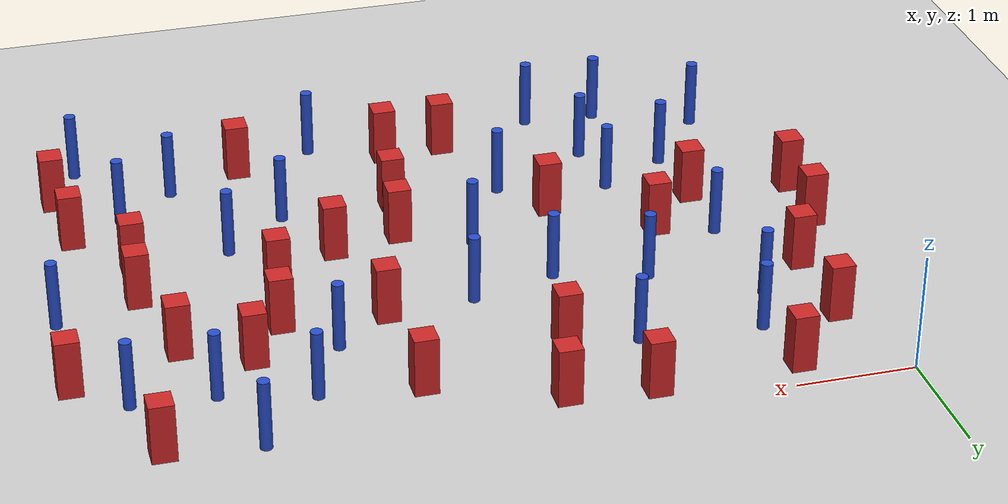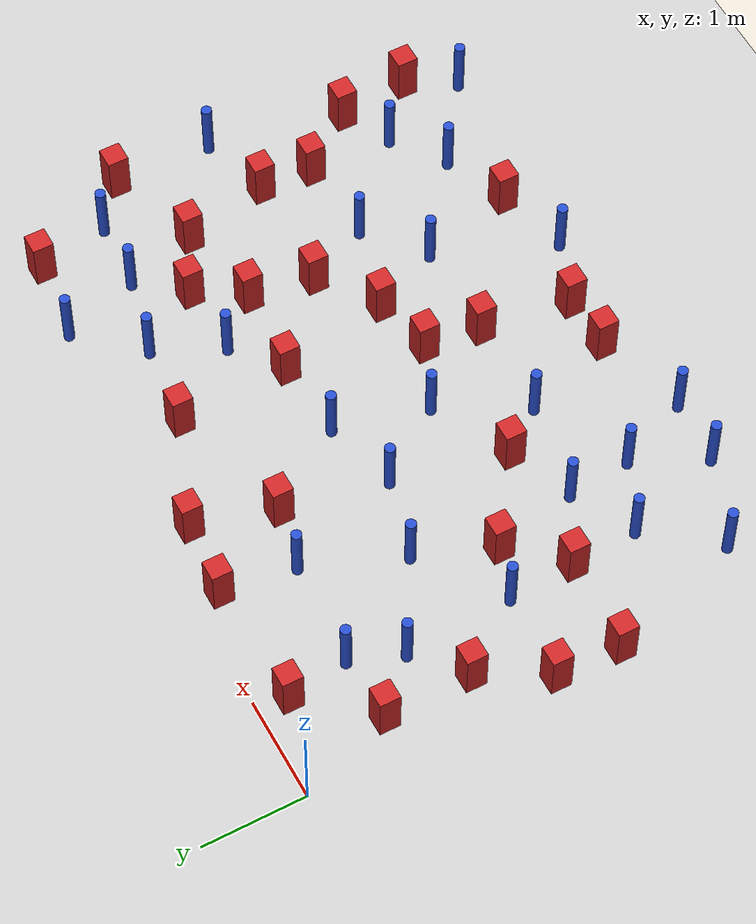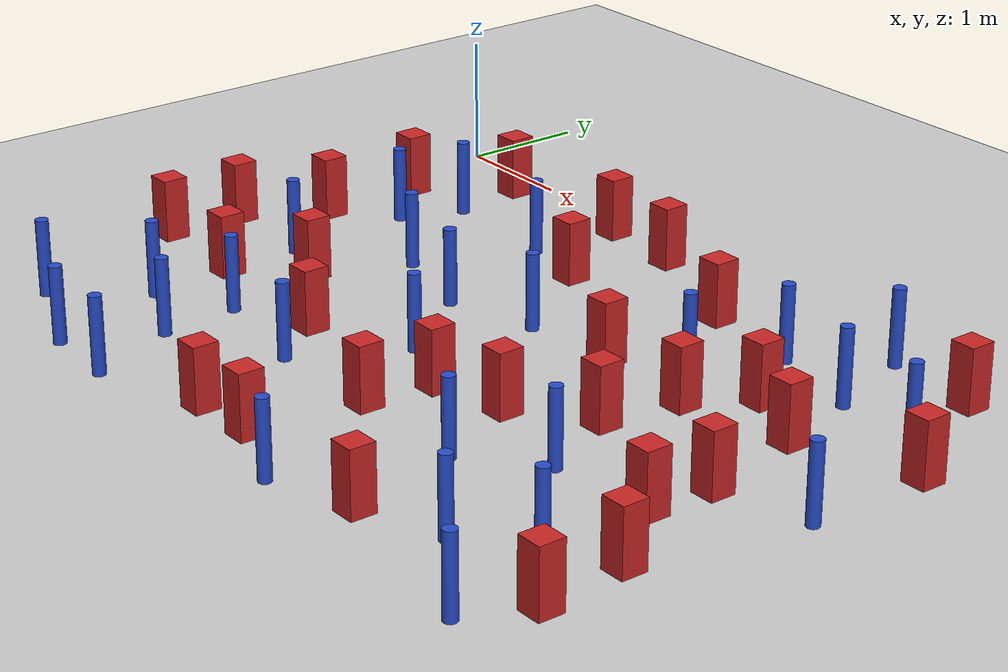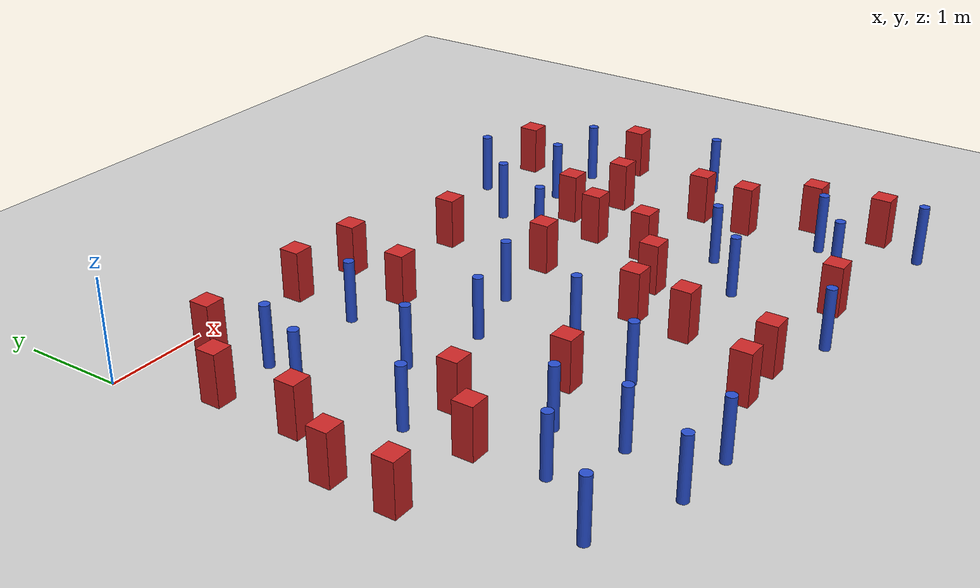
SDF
<sdf version="1.6">
 <world name="default">
  <model name="ground_plane">
   <static>1</static>
   <link name="link">
    <collision name="collision">
     <geometry><plane><normal>0 0 1</normal><size>100 100</size></plane></geometry>
     <surface><friction><ode><mu>100</mu><mu2>50</mu2></ode></friction></surface>
    </collision>
    <visual name="visual">
     <cast_shadows>0</cast_shadows>
     <geometry><plane><normal>0 0 1</normal><size>100 100</size></plane></geometry>
     <material>
      <ambient>1.0 1.0 1.0 1.0</ambient>
      <diffuse>0.8 0.8 0.8 1.0</diffuse>
      <specular>0.01 0.01 0.01 1.000000</specular>
     </material>
    </visual>
   </link>
  </model>
  <model name="NamedLocations">
   <static>true</static>
   <link name="DefaultStart"><pose>8.5 0 0 0 0 3.14</pose></link>
  </model>
  <model name="pole_obstacle15">
   <static>true</static>
   <pose>0.769162764742 -1.35992684402 2.88873142074e-08 -9.90536689855e-09 4.60219948989e-07 -1.20965994962e-07</pose>
   <link name="link">
    <pose>0 0 0.3 0 -0 0</pose>
    <inertial>
     <mass>1</mass>
     <inertia><ixx>0.145833</ixx><ixy>0</ixy><ixz>0</ixz><iyy>0.145833</iyy><iyz>0</iyz><izz>0.125</izz></inertia>
    </inertial>
    <collision name="collision">
     <geometry><cylinder><radius>0.05</radius><length>.6</length></cylinder></geometry>
    </collision>
    <visual name="visual">
     <geometry><cylinder><radius>0.05</radius><length>.6</length></cylinder></geometry>
     <material>
      <script><name>Gazebo/Blue</name><uri>file://media/materials/scripts/gazebo.material</uri></script>
     </material>
    </visual>
   </link>
  </model>
  <model name="pole_obstacle17">
   <static>true</static>
   <pose>0.95714295873 -0.871402900502 2.88873142074e-08 -9.90536689596e-09 4.60219948995e-07 -1.20965994957e-07</pose>
   <link name="link">
    <pose>0 0 0.3 0 -0 0</pose>
    <inertial>
     <mass>1</mass>
     <inertia><ixx>0.145833</ixx><ixy>0</ixy><ixz>0</ixz><iyy>0.145833</iyy><iyz>0</iyz><izz>0.125</izz></inertia>
    </inertial>
    <collision name="collision">
     <geometry><cylinder><radius>0.05</radius><length>.6</length></cylinder></geometry>
    </collision>
    <visual name="visual">
     <geometry><cylinder><radius>0.05</radius><length>.6</length></cylinder></geometry>
     <material>
      <script><name>Gazebo/Blue</name><uri>file://media/materials/scripts/gazebo.material</uri></script>
     </material>
    </visual>
   </link>
  </model>
  <model name="pole_obstacle29">
   <static>true</static>
   <pose>5.98995046235 -4.76751873992 2.88873142074e-08 -9.90536690842e-09 4.60219948965e-07 -1.20965994976e-07</pose>
   <link name="link">
    <pose>0 0 0.3 0 -0 0</pose>
    <inertial>
     <mass>1</mass>
     <inertia><ixx>0.145833</ixx><ixy>0</ixy><ixz>0</ixz><iyy>0.145833</iyy><iyz>0</iyz><izz>0.125</izz></inertia>
    </inertial>
    <collision name="collision">
     <geometry><cylinder><radius>0.05</radius><length>.6</length></cylinder></geometry>
    </collision>
    <visual name="visual">
     <geometry><cylinder><radius>0.05</radius><length>.6</length></cylinder></geometry>
     <material>
      <script><name>Gazebo/Blue</name><uri>file://media/materials/scripts/gazebo.material</uri></script>
     </material>
    </visual>
   </link>
  </model>
  <model name="pole_obstacle30">
   <static>true</static>
   <pose>2.36978107374 -2.05963442958 2.88873142074e-08 -9.90536690232e-09 4.6021994898e-07 -1.20965994968e-07</pose>
   <link name="link">
    <pose>0 0 0.3 0 -0 0</pose>
    <inertial>
     <mass>1</mass>
     <inertia><ixx>0.145833</ixx><ixy>0</ixy><ixz>0</ixz><iyy>0.145833</iyy><iyz>0</iyz><izz>0.125</izz></inertia>
    </inertial>
    <collision name="collision">
     <geometry><cylinder><radius>0.05</radius><length>.6</length></cylinder></geometry>
    </collision>
    <visual name="visual">
     <geometry><cylinder><radius>0.05</radius><length>.6</length></cylinder></geometry>
     <material>
      <script><name>Gazebo/Blue</name><uri>file://media/materials/scripts/gazebo.material</uri></script>
     </material>
    </visual>
   </link>
  </model>
  <model name="pole_obstacle35">
   <static>true</static>
   <pose>4.9008948574 -3.11379611266 2.88873142074e-08 -9.90536690245e-09 4.6021994898e-07 -1.20965994966e-07</pose>
   <link name="link">
    <pose>0 0 0.3 0 -0 0</pose>
    <inertial>
     <mass>1</mass>
     <inertia><ixx>0.145833</ixx><ixy>0</ixy><ixz>0</ixz><iyy>0.145833</iyy><iyz>0</iyz><izz>0.125</izz></inertia>
    </inertial>
    <collision name="collision">
     <geometry><cylinder><radius>0.05</radius><length>.6</length></cylinder></geometry>
    </collision>
    <visual name="visual">
     <geometry><cylinder><radius>0.05</radius><length>.6</length></cylinder></geometry>
     <material>
      <script><name>Gazebo/Blue</name><uri>file://media/materials/scripts/gazebo.material</uri></script>
     </material>
    </visual>
   </link>
  </model>
  <model name="pole_obstacle37">
   <static>true</static>
   <pose>0.829519116074 -2.40910793049 2.88873142074e-08 -9.90536689636e-09 4.60219948994e-07 -1.20965994958e-07</pose>
   <link name="link">
    <pose>0 0 0.3 0 -0 0</pose>
    <inertial>
     <mass>1</mass>
     <inertia><ixx>0.145833</ixx><ixy>0</ixy><ixz>0</ixz><iyy>0.145833</iyy><iyz>0</iyz><izz>0.125</izz></inertia>
    </inertial>
    <collision name="collision">
     <geometry><cylinder><radius>0.05</radius><length>.6</length></cylinder></geometry>
    </collision>
    <visual name="visual">
     <geometry><cylinder><radius>0.05</radius><length>.6</length></cylinder></geometry>
     <material>
      <script><name>Gazebo/Blue</name><uri>file://media/materials/scripts/gazebo.material</uri></script>
     </material>
    </visual>
   </link>
  </model>
  <model name="square_post_obstacle32">
   <static>true</static>
   <pose>4.05014192098 -2.87845917345 8.22691968438e-08 7.2212513382e-06 -7.54495500217e-07 2.29674213826e-05</pose>
   <link name="link">
    <pose>0 0 0.25 0 -0 0</pose>
    <inertial>
     <mass>100</mass>
     <inertia>
      <ixx>0.166667</ixx>
      <ixy>0</ixy>
      <ixz>0</ixz>
      <iyy>0.166667</iyy>
      <iyz>0</iyz>
      <izz>0.166667</izz>
     </inertia>
    </inertial>
    <collision name="collision"><geometry><box><size>.2 .2 .5</size></box></geometry></collision>
    <visual name="visual">
     <geometry><box><size>.2 .2 .5</size></box></geometry>
     <material>
      <script><name>Gazebo/Red</name><uri>file://media/materials/scripts/gazebo.material</uri></script>
     </material>
    </visual>
   </link>
  </model>
  <model name="square_post_obstacle35">
   <static>true</static>
   <pose>-0.0429492163509 -2.99387497049 8.22691968438e-08 7.2212513382e-06 -7.54495500217e-07 2.29674213826e-05</pose>
   <link name="link">
    <pose>0 0 0.25 0 -0 0</pose>
    <inertial>
     <mass>100</mass>
     <inertia>
      <ixx>0.166667</ixx>
      <ixy>0</ixy>
      <ixz>0</ixz>
      <iyy>0.166667</iyy>
      <iyz>0</iyz>
      <izz>0.166667</izz>
     </inertia>
    </inertial>
    <collision name="collision"><geometry><box><size>.2 .2 .5</size></box></geometry></collision>
    <visual name="visual">
     <geometry><box><size>.2 .2 .5</size></box></geometry>
     <material>
      <script><name>Gazebo/Red</name><uri>file://media/materials/scripts/gazebo.material</uri></script>
     </material>
    </visual>
   </link>
  </model>
  <model name="square_post_obstacle37">
   <static>true</static>
   <pose>6.15912389161 -3.60643799361 8.22691968438e-08 7.2212513382e-06 -7.54495500217e-07 2.29674213826e-05</pose>
   <link name="link">
    <pose>0 0 0.25 0 -0 0</pose>
    <inertial>
     <mass>100</mass>
     <inertia>
      <ixx>0.166667</ixx>
      <ixy>0</ixy>
      <ixz>0</ixz>
      <iyy>0.166667</iyy>
      <iyz>0</iyz>
      <izz>0.166667</izz>
     </inertia>
    </inertial>
    <collision name="collision"><geometry><box><size>.2 .2 .5</size></box></geometry></collision>
    <visual name="visual">
     <geometry><box><size>.2 .2 .5</size></box></geometry>
     <material>
      <script><name>Gazebo/Red</name><uri>file://media/materials/scripts/gazebo.material</uri></script>
     </material>
    </visual>
   </link>
  </model>
  <model name="pole_obstacle56">
   <static>true</static>
   <pose>4.61778017199 -0.808893609226 2.88873142074e-08 -9.90536689837e-09 4.60219948989e-07 -1.2096599496e-07</pose>
   <link name="link">
    <pose>0 0 0.3 0 -0 0</pose>
    <inertial>
     <mass>1</mass>
     <inertia><ixx>0.145833</ixx><ixy>0</ixy><ixz>0</ixz><iyy>0.145833</iyy><iyz>0</iyz><izz>0.125</izz></inertia>
    </inertial>
    <collision name="collision">
     <geometry><cylinder><radius>0.05</radius><length>.6</length></cylinder></geometry>
    </collision>
    <visual name="visual">
     <geometry><cylinder><radius>0.05</radius><length>.6</length></cylinder></geometry>
     <material>
      <script><name>Gazebo/Blue</name><uri>file://media/materials/scripts/gazebo.material</uri></script>
     </material>
    </visual>
   </link>
  </model>
  <model name="pole_obstacle59">
   <static>true</static>
   <pose>1.85679382743 -4.71768325398 2.88873142074e-08 -9.90536689852e-09 4.60219948989e-07 -1.2096599496e-07</pose>
   <link name="link">
    <pose>0 0 0.3 0 -0 0</pose>
    <inertial>
     <mass>1</mass>
     <inertia><ixx>0.145833</ixx><ixy>0</ixy><ixz>0</ixz><iyy>0.145833</iyy><iyz>0</iyz><izz>0.125</izz></inertia>
    </inertial>
    <collision name="collision">
     <geometry><cylinder><radius>0.05</radius><length>.6</length></cylinder></geometry>
    </collision>
    <visual name="visual">
     <geometry><cylinder><radius>0.05</radius><length>.6</length></cylinder></geometry>
     <material>
      <script><name>Gazebo/Blue</name><uri>file://media/materials/scripts/gazebo.material</uri></script>
     </material>
    </visual>
   </link>
  </model>
  <model name="pole_obstacle67">
   <static>true</static>
   <pose>6.04631940572 -1.04282990941 2.88873142074e-08 -9.90536689582e-09 4.60219948995e-07 -1.20965994957e-07</pose>
   <link name="link">
    <pose>0 0 0.3 0 -0 0</pose>
    <inertial>
     <mass>1</mass>
     <inertia><ixx>0.145833</ixx><ixy>0</ixy><ixz>0</ixz><iyy>0.145833</iyy><iyz>0</iyz><izz>0.125</izz></inertia>
    </inertial>
    <collision name="collision">
     <geometry><cylinder><radius>0.05</radius><length>.6</length></cylinder></geometry>
    </collision>
    <visual name="visual">
     <geometry><cylinder><radius>0.05</radius><length>.6</length></cylinder></geometry>
     <material>
      <script><name>Gazebo/Blue</name><uri>file://media/materials/scripts/gazebo.material</uri></script>
     </material>
    </visual>
   </link>
  </model>
  <model name="square_post_obstacle64">
   <static>true</static>
   <pose>2.73730496843 -4.43475670283 8.22691968438e-08 7.2212513382e-06 -7.54495500217e-07 2.29674213826e-05</pose>
   <link name="link">
    <pose>0 0 0.25 0 -0 0</pose>
    <inertial>
     <mass>100</mass>
     <inertia>
      <ixx>0.166667</ixx>
      <ixy>0</ixy>
      <ixz>0</ixz>
      <iyy>0.166667</iyy>
      <iyz>0</iyz>
      <izz>0.166667</izz>
     </inertia>
    </inertial>
    <collision name="collision"><geometry><box><size>.2 .2 .5</size></box></geometry></collision>
    <visual name="visual">
     <geometry><box><size>.2 .2 .5</size></box></geometry>
     <material>
      <script><name>Gazebo/Red</name><uri>file://media/materials/scripts/gazebo.material</uri></script>
     </material>
    </visual>
   </link>
  </model>
  <model name="pole_obstacle76">
   <static>true</static>
   <pose>1.60727522682 -1.84961164731 2.88873142074e-08 -9.90536689672e-09 4.60219948993e-07 -1.20965994959e-07</pose>
   <link name="link">
    <pose>0 0 0.3 0 -0 0</pose>
    <inertial>
     <mass>1</mass>
     <inertia><ixx>0.145833</ixx><ixy>0</ixy><ixz>0</ixz><iyy>0.145833</iyy><iyz>0</iyz><izz>0.125</izz></inertia>
    </inertial>
    <collision name="collision">
     <geometry><cylinder><radius>0.05</radius><length>.6</length></cylinder></geometry>
    </collision>
    <visual name="visual">
     <geometry><cylinder><radius>0.05</radius><length>.6</length></cylinder></geometry>
     <material>
      <script><name>Gazebo/Blue</name><uri>file://media/materials/scripts/gazebo.material</uri></script>
     </material>
    </visual>
   </link>
  </model>
  <model name="square_post_obstacle66">
   <static>true</static>
   <pose>5.56160485518 -1.68857349749 8.22691968438e-08 7.2212513382e-06 -7.54495500217e-07 2.29674213826e-05</pose>
   <link name="link">
    <pose>0 0 0.25 0 -0 0</pose>
    <inertial>
     <mass>100</mass>
     <inertia>
      <ixx>0.166667</ixx>
      <ixy>0</ixy>
      <ixz>0</ixz>
      <iyy>0.166667</iyy>
      <iyz>0</iyz>
      <izz>0.166667</izz>
     </inertia>
    </inertial>
    <collision name="collision"><geometry><box><size>.2 .2 .5</size></box></geometry></collision>
    <visual name="visual">
     <geometry><box><size>.2 .2 .5</size></box></geometry>
     <material>
      <script><name>Gazebo/Red</name><uri>file://media/materials/scripts/gazebo.material</uri></script>
     </material>
    </visual>
   </link>
  </model>
  <model name="pole_obstacle78">
   <static>true</static>
   <pose>1.55392513301 -4.01010132674 2.88873142074e-08 -9.90536689874e-09 4.60219948988e-07 -1.20965994961e-07</pose>
   <link name="link">
    <pose>0 0 0.3 0 -0 0</pose>
    <inertial>
     <mass>1</mass>
     <inertia><ixx>0.145833</ixx><ixy>0</ixy><ixz>0</ixz><iyy>0.145833</iyy><iyz>0</iyz><izz>0.125</izz></inertia>
    </inertial>
    <collision name="collision">
     <geometry><cylinder><radius>0.05</radius><length>.6</length></cylinder></geometry>
    </collision>
    <visual name="visual">
     <geometry><cylinder><radius>0.05</radius><length>.6</length></cylinder></geometry>
     <material>
      <script><name>Gazebo/Blue</name><uri>file://media/materials/scripts/gazebo.material</uri></script>
     </material>
    </visual>
   </link>
  </model>
  <model name="square_post_obstacle69">
   <static>true</static>
   <pose>4.58757609712 -4.45816808891 8.22691968438e-08 7.22125133819e-06 -7.54495500217e-07 2.29674213826e-05</pose>
   <link name="link">
    <pose>0 0 0.25 0 -0 0</pose>
    <inertial>
     <mass>100</mass>
     <inertia>
      <ixx>0.166667</ixx>
      <ixy>0</ixy>
      <ixz>0</ixz>
      <iyy>0.166667</iyy>
      <iyz>0</iyz>
      <izz>0.166667</izz>
     </inertia>
    </inertial>
    <collision name="collision"><geometry><box><size>.2 .2 .5</size></box></geometry></collision>
    <visual name="visual">
     <geometry><box><size>.2 .2 .5</size></box></geometry>
     <material>
      <script><name>Gazebo/Red</name><uri>file://media/materials/scripts/gazebo.material</uri></script>
     </material>
    </visual>
   </link>
  </model>
  <model name="pole_obstacle85">
   <static>true</static>
   <pose>2.87616925823 -2.75219751176 2.88873142074e-08 -9.90536690232e-09 4.6021994898e-07 -1.20965994968e-07</pose>
   <link name="link">
    <pose>0 0 0.3 0 -0 0</pose>
    <inertial>
     <mass>1</mass>
     <inertia><ixx>0.145833</ixx><ixy>0</ixy><ixz>0</ixz><iyy>0.145833</iyy><iyz>0</iyz><izz>0.125</izz></inertia>
    </inertial>
    <collision name="collision">
     <geometry><cylinder><radius>0.05</radius><length>.6</length></cylinder></geometry>
    </collision>
    <visual name="visual">
     <geometry><cylinder><radius>0.05</radius><length>.6</length></cylinder></geometry>
     <material>
      <script><name>Gazebo/Blue</name><uri>file://media/materials/scripts/gazebo.material</uri></script>
     </material>
    </visual>
   </link>
  </model>
  <model name="square_post_obstacle77">
   <static>true</static>
   <pose>4.70554255808 -1.86569686693 8.22691968438e-08 7.2212513382e-06 -7.54495500217e-07 2.29674213826e-05</pose>
   <link name="link">
    <pose>0 0 0.25 0 -0 0</pose>
    <inertial>
     <mass>100</mass>
     <inertia>
      <ixx>0.166667</ixx>
      <ixy>0</ixy>
      <ixz>0</ixz>
      <iyy>0.166667</iyy>
      <iyz>0</iyz>
      <izz>0.166667</izz>
     </inertia>
    </inertial>
    <collision name="collision"><geometry><box><size>.2 .2 .5</size></box></geometry></collision>
    <visual name="visual">
     <geometry><box><size>.2 .2 .5</size></box></geometry>
     <material>
      <script><name>Gazebo/Red</name><uri>file://media/materials/scripts/gazebo.material</uri></script>
     </material>
    </visual>
   </link>
  </model>
  <model name="pole_obstacle98">
   <static>true</static>
   <pose>0.393448128582 -4.33661438772 2.88873142074e-08 -9.90536689683e-09 4.60219948993e-07 -1.20965994957e-07</pose>
   <link name="link">
    <pose>0 0 0.3 0 -0 0</pose>
    <inertial>
     <mass>1</mass>
     <inertia><ixx>0.145833</ixx><ixy>0</ixy><ixz>0</ixz><iyy>0.145833</iyy><iyz>0</iyz><izz>0.125</izz></inertia>
    </inertial>
    <collision name="collision">
     <geometry><cylinder><radius>0.05</radius><length>.6</length></cylinder></geometry>
    </collision>
    <visual name="visual">
     <geometry><cylinder><radius>0.05</radius><length>.6</length></cylinder></geometry>
     <material>
      <script><name>Gazebo/Blue</name><uri>file://media/materials/scripts/gazebo.material</uri></script>
     </material>
    </visual>
   </link>
  </model>
  <model name="square_post_obstacle93">
   <static>true</static>
   <pose>3.84641925119 -1.79739040138 8.22691968438e-08 7.2212513382e-06 -7.54495500217e-07 2.29674213826e-05</pose>
   <link name="link">
    <pose>0 0 0.25 0 -0 0</pose>
    <inertial>
     <mass>100</mass>
     <inertia>
      <ixx>0.166667</ixx>
      <ixy>0</ixy>
      <ixz>0</ixz>
      <iyy>0.166667</iyy>
      <iyz>0</iyz>
      <izz>0.166667</izz>
     </inertia>
    </inertial>
    <collision name="collision"><geometry><box><size>.2 .2 .5</size></box></geometry></collision>
    <visual name="visual">
     <geometry><box><size>.2 .2 .5</size></box></geometry>
     <material>
      <script><name>Gazebo/Red</name><uri>file://media/materials/scripts/gazebo.material</uri></script>
     </material>
    </visual>
   </link>
  </model>
  <model name="pole_obstacle106">
   <static>true</static>
   <pose>0.902144879088 -3.70325871188 2.88873142074e-08 -9.90536689636e-09 4.60219948994e-07 -1.20965994958e-07</pose>
   <link name="link">
    <pose>0 0 0.3 0 -0 0</pose>
    <inertial>
     <mass>1</mass>
     <inertia><ixx>0.145833</ixx><ixy>0</ixy><ixz>0</ixz><iyy>0.145833</iyy><iyz>0</iyz><izz>0.125</izz></inertia>
    </inertial>
    <collision name="collision">
     <geometry><cylinder><radius>0.05</radius><length>.6</length></cylinder></geometry>
    </collision>
    <visual name="visual">
     <geometry><cylinder><radius>0.05</radius><length>.6</length></cylinder></geometry>
     <material>
      <script><name>Gazebo/Blue</name><uri>file://media/materials/scripts/gazebo.material</uri></script>
     </material>
    </visual>
   </link>
  </model>
  <model name="square_post_obstacle102">
   <static>true</static>
   <pose>0.871644400696 -0.275916273397 8.22691968438e-08 7.2212513382e-06 -7.54495500217e-07 2.29674213826e-05</pose>
   <link name="link">
    <pose>0 0 0.25 0 -0 0</pose>
    <inertial>
     <mass>100</mass>
     <inertia>
      <ixx>0.166667</ixx>
      <ixy>0</ixy>
      <ixz>0</ixz>
      <iyy>0.166667</iyy>
      <iyz>0</iyz>
      <izz>0.166667</izz>
     </inertia>
    </inertial>
    <collision name="collision"><geometry><box><size>.2 .2 .5</size></box></geometry></collision>
    <visual name="visual">
     <geometry><box><size>.2 .2 .5</size></box></geometry>
     <material>
      <script><name>Gazebo/Red</name><uri>file://media/materials/scripts/gazebo.material</uri></script>
     </material>
    </visual>
   </link>
  </model>
  <model name="pole_obstacle108">
   <static>true</static>
   <pose>1.49549840953 -3.39005839531 2.88873142074e-08 -9.90536689791e-09 4.6021994899e-07 -1.20965994959e-07</pose>
   <link name="link">
    <pose>0 0 0.3 0 -0 0</pose>
    <inertial>
     <mass>1</mass>
     <inertia><ixx>0.145833</ixx><ixy>0</ixy><ixz>0</ixz><iyy>0.145833</iyy><iyz>0</iyz><izz>0.125</izz></inertia>
    </inertial>
    <collision name="collision">
     <geometry><cylinder><radius>0.05</radius><length>.6</length></cylinder></geometry>
    </collision>
    <visual name="visual">
     <geometry><cylinder><radius>0.05</radius><length>.6</length></cylinder></geometry>
     <material>
      <script><name>Gazebo/Blue</name><uri>file://media/materials/scripts/gazebo.material</uri></script>
     </material>
    </visual>
   </link>
  </model>
  <model name="square_post_obstacle110">
   <static>true</static>
   <pose>5.72158088106 -3.04098964238 8.22691968438e-08 7.2212513382e-06 -7.54495500217e-07 2.29674213826e-05</pose>
   <link name="link">
    <pose>0 0 0.25 0 -0 0</pose>
    <inertial>
     <mass>100</mass>
     <inertia>
      <ixx>0.166667</ixx>
      <ixy>0</ixy>
      <ixz>0</ixz>
      <iyy>0.166667</iyy>
      <iyz>0</iyz>
      <izz>0.166667</izz>
     </inertia>
    </inertial>
    <collision name="collision"><geometry><box><size>.2 .2 .5</size></box></geometry></collision>
    <visual name="visual">
     <geometry><box><size>.2 .2 .5</size></box></geometry>
     <material>
      <script><name>Gazebo/Red</name><uri>file://media/materials/scripts/gazebo.material</uri></script>
     </material>
    </visual>
   </link>
  </model>
  <model name="pole_obstacle115">
   <static>true</static>
   <pose>4.31542038046 -1.44697930244 2.88873142074e-08 -9.90536689445e-09 4.60219948999e-07 -1.20965994956e-07</pose>
   <link name="link">
    <pose>0 0 0.3 0 -0 0</pose>
    <inertial>
     <mass>1</mass>
     <inertia><ixx>0.145833</ixx><ixy>0</ixy><ixz>0</ixz><iyy>0.145833</iyy><iyz>0</iyz><izz>0.125</izz></inertia>
    </inertial>
    <collision name="collision">
     <geometry><cylinder><radius>0.05</radius><length>.6</length></cylinder></geometry>
    </collision>
    <visual name="visual">
     <geometry><cylinder><radius>0.05</radius><length>.6</length></cylinder></geometry>
     <material>
      <script><name>Gazebo/Blue</name><uri>file://media/materials/scripts/gazebo.material</uri></script>
     </material>
    </visual>
   </link>
  </model>
  <model name="square_post_obstacle112">
   <static>true</static>
   <pose>3.26810388128 -4.416602319 8.22691968438e-08 7.22125133819e-06 -7.54495500217e-07 2.29674213826e-05</pose>
   <link name="link">
    <pose>0 0 0.25 0 -0 0</pose>
    <inertial>
     <mass>100</mass>
     <inertia>
      <ixx>0.166667</ixx>
      <ixy>0</ixy>
      <ixz>0</ixz>
      <iyy>0.166667</iyy>
      <iyz>0</iyz>
      <izz>0.166667</izz>
     </inertia>
    </inertial>
    <collision name="collision"><geometry><box><size>.2 .2 .5</size></box></geometry></collision>
    <visual name="visual">
     <geometry><box><size>.2 .2 .5</size></box></geometry>
     <material>
      <script><name>Gazebo/Red</name><uri>file://media/materials/scripts/gazebo.material</uri></script>
     </material>
    </visual>
   </link>
  </model>
  <model name="square_post_obstacle115">
   <static>true</static>
   <pose>0.318655013672 -0.901375714987 8.22691968438e-08 7.2212513382e-06 -7.54495500217e-07 2.29674213826e-05</pose>
   <link name="link">
    <pose>0 0 0.25 0 -0 0</pose>
    <inertial>
     <mass>100</mass>
     <inertia>
      <ixx>0.166667</ixx>
      <ixy>0</ixy>
      <ixz>0</ixz>
      <iyy>0.166667</iyy>
      <iyz>0</iyz>
      <izz>0.166667</izz>
     </inertia>
    </inertial>
    <collision name="collision"><geometry><box><size>.2 .2 .5</size></box></geometry></collision>
    <visual name="visual">
     <geometry><box><size>.2 .2 .5</size></box></geometry>
     <material>
      <script><name>Gazebo/Red</name><uri>file://media/materials/scripts/gazebo.material</uri></script>
     </material>
    </visual>
   </link>
  </model>
  <model name="pole_obstacle129">
   <static>true</static>
   <pose>6.45061020601 -2.33184595902 2.88873142074e-08 -9.90536690245e-09 4.6021994898e-07 -1.20965994966e-07</pose>
   <link name="link">
    <pose>0 0 0.3 0 -0 0</pose>
    <inertial>
     <mass>1</mass>
     <inertia><ixx>0.145833</ixx><ixy>0</ixy><ixz>0</ixz><iyy>0.145833</iyy><iyz>0</iyz><izz>0.125</izz></inertia>
    </inertial>
    <collision name="collision">
     <geometry><cylinder><radius>0.05</radius><length>.6</length></cylinder></geometry>
    </collision>
    <visual name="visual">
     <geometry><cylinder><radius>0.05</radius><length>.6</length></cylinder></geometry>
     <material>
      <script><name>Gazebo/Blue</name><uri>file://media/materials/scripts/gazebo.material</uri></script>
     </material>
    </visual>
   </link>
  </model>
  <model name="square_post_obstacle130">
   <static>true</static>
   <pose>2.77546601382 -0.29130964935 8.22691968438e-08 7.2212513382e-06 -7.54495500217e-07 2.29674213826e-05</pose>
   <link name="link">
    <pose>0 0 0.25 0 -0 0</pose>
    <inertial>
     <mass>100</mass>
     <inertia>
      <ixx>0.166667</ixx>
      <ixy>0</ixy>
      <ixz>0</ixz>
      <iyy>0.166667</iyy>
      <iyz>0</iyz>
      <izz>0.166667</izz>
     </inertia>
    </inertial>
    <collision name="collision"><geometry><box><size>.2 .2 .5</size></box></geometry></collision>
    <visual name="visual">
     <geometry><box><size>.2 .2 .5</size></box></geometry>
     <material>
      <script><name>Gazebo/Red</name><uri>file://media/materials/scripts/gazebo.material</uri></script>
     </material>
    </visual>
   </link>
  </model>
  <model name="square_post_obstacle132">
   <static>true</static>
   <pose>0.324380326314 -1.73738617645 8.22691968438e-08 7.2212513382e-06 -7.54495500217e-07 2.29674213826e-05</pose>
   <link name="link">
    <pose>0 0 0.25 0 -0 0</pose>
    <inertial>
     <mass>100</mass>
     <inertia>
      <ixx>0.166667</ixx>
      <ixy>0</ixy>
      <ixz>0</ixz>
      <iyy>0.166667</iyy>
      <iyz>0</iyz>
      <izz>0.166667</izz>
     </inertia>
    </inertial>
    <collision name="collision"><geometry><box><size>.2 .2 .5</size></box></geometry></collision>
    <visual name="visual">
     <geometry><box><size>.2 .2 .5</size></box></geometry>
     <material>
      <script><name>Gazebo/Red</name><uri>file://media/materials/scripts/gazebo.material</uri></script>
     </material>
    </visual>
   </link>
  </model>
  <model name="pole_obstacle136">
   <static>true</static>
   <pose>3.90010924288 -4.67558470246 2.88873142074e-08 -9.90536689859e-09 4.60219948989e-07 -1.20965994961e-07</pose>
   <link name="link">
    <pose>0 0 0.3 0 -0 0</pose>
    <inertial>
     <mass>1</mass>
     <inertia><ixx>0.145833</ixx><ixy>0</ixy><ixz>0</ixz><iyy>0.145833</iyy><iyz>0</iyz><izz>0.125</izz></inertia>
    </inertial>
    <collision name="collision">
     <geometry><cylinder><radius>0.05</radius><length>.6</length></cylinder></geometry>
    </collision>
    <visual name="visual">
     <geometry><cylinder><radius>0.05</radius><length>.6</length></cylinder></geometry>
     <material>
      <script><name>Gazebo/Blue</name><uri>file://media/materials/scripts/gazebo.material</uri></script>
     </material>
    </visual>
   </link>
  </model>
  <model name="pole_obstacle140">
   <static>true</static>
   <pose>5.70724712839 -3.86541862942 2.88873142074e-08 -9.90536690245e-09 4.6021994898e-07 -1.20965994966e-07</pose>
   <link name="link">
    <pose>0 0 0.3 0 -0 0</pose>
    <inertial>
     <mass>1</mass>
     <inertia><ixx>0.145833</ixx><ixy>0</ixy><ixz>0</ixz><iyy>0.145833</iyy><iyz>0</iyz><izz>0.125</izz></inertia>
    </inertial>
    <collision name="collision">
     <geometry><cylinder><radius>0.05</radius><length>.6</length></cylinder></geometry>
    </collision>
    <visual name="visual">
     <geometry><cylinder><radius>0.05</radius><length>.6</length></cylinder></geometry>
     <material>
      <script><name>Gazebo/Blue</name><uri>file://media/materials/scripts/gazebo.material</uri></script>
     </material>
    </visual>
   </link>
  </model>
  <model name="square_post_obstacle135">
   <static>true</static>
   <pose>4.60620589146 -2.48232348353 8.22691968438e-08 7.2212513382e-06 -7.54495500217e-07 2.29674213826e-05</pose>
   <link name="link">
    <pose>0 0 0.25 0 -0 0</pose>
    <inertial>
     <mass>100</mass>
     <inertia>
      <ixx>0.166667</ixx>
      <ixy>0</ixy>
      <ixz>0</ixz>
      <iyy>0.166667</iyy>
      <iyz>0</iyz>
      <izz>0.166667</izz>
     </inertia>
    </inertial>
    <collision name="collision"><geometry><box><size>.2 .2 .5</size></box></geometry></collision>
    <visual name="visual">
     <geometry><box><size>.2 .2 .5</size></box></geometry>
     <material>
      <script><name>Gazebo/Red</name><uri>file://media/materials/scripts/gazebo.material</uri></script>
     </material>
    </visual>
   </link>
  </model>
  <model name="square_post_obstacle148">
   <static>true</static>
   <pose>-0.0263301562348 -2.36638040001 8.22691968438e-08 7.22125133819e-06 -7.54495500217e-07 2.29674213826e-05</pose>
   <link name="link">
    <pose>0 0 0.25 0 -0 0</pose>
    <inertial>
     <mass>100</mass>
     <inertia>
      <ixx>0.166667</ixx>
      <ixy>0</ixy>
      <ixz>0</ixz>
      <iyy>0.166667</iyy>
      <iyz>0</iyz>
      <izz>0.166667</izz>
     </inertia>
    </inertial>
    <collision name="collision"><geometry><box><size>.2 .2 .5</size></box></geometry></collision>
    <visual name="visual">
     <geometry><box><size>.2 .2 .5</size></box></geometry>
     <material>
      <script><name>Gazebo/Red</name><uri>file://media/materials/scripts/gazebo.material</uri></script>
     </material>
    </visual>
   </link>
  </model>
  <model name="pole_obstacle154">
   <static>true</static>
   <pose>3.09630305638 -1.8640482362 2.88873142074e-08 -9.90536689395e-09 4.60219949e-07 -1.20965994953e-07</pose>
   <link name="link">
    <pose>0 0 0.3 0 -0 0</pose>
    <inertial>
     <mass>1</mass>
     <inertia><ixx>0.145833</ixx><ixy>0</ixy><ixz>0</ixz><iyy>0.145833</iyy><iyz>0</iyz><izz>0.125</izz></inertia>
    </inertial>
    <collision name="collision">
     <geometry><cylinder><radius>0.05</radius><length>.6</length></cylinder></geometry>
    </collision>
    <visual name="visual">
     <geometry><cylinder><radius>0.05</radius><length>.6</length></cylinder></geometry>
     <material>
      <script><name>Gazebo/Blue</name><uri>file://media/materials/scripts/gazebo.material</uri></script>
     </material>
    </visual>
   </link>
  </model>
  <model name="pole_obstacle155">
   <static>true</static>
   <pose>5.13626152651 -0.251020438747 2.88873142074e-08 -9.9053668927e-09 4.60219949003e-07 -1.20965994954e-07</pose>
   <link name="link">
    <pose>0 0 0.3 0 -0 0</pose>
    <inertial>
     <mass>1</mass>
     <inertia><ixx>0.145833</ixx><ixy>0</ixy><ixz>0</ixz><iyy>0.145833</iyy><iyz>0</iyz><izz>0.125</izz></inertia>
    </inertial>
    <collision name="collision">
     <geometry><cylinder><radius>0.05</radius><length>.6</length></cylinder></geometry>
    </collision>
    <visual name="visual">
     <geometry><cylinder><radius>0.05</radius><length>.6</length></cylinder></geometry>
     <material>
      <script><name>Gazebo/Blue</name><uri>file://media/materials/scripts/gazebo.material</uri></script>
     </material>
    </visual>
   </link>
  </model>
  <model name="square_post_obstacle155">
   <static>true</static>
   <pose>3.80320709916 -0.71313765523 8.22691968438e-08 7.2212513382e-06 -7.54495500217e-07 2.29674213826e-05</pose>
   <link name="link">
    <pose>0 0 0.25 0 -0 0</pose>
    <inertial>
     <mass>100</mass>
     <inertia>
      <ixx>0.166667</ixx>
      <ixy>0</ixy>
      <ixz>0</ixz>
      <iyy>0.166667</iyy>
      <iyz>0</iyz>
      <izz>0.166667</izz>
     </inertia>
    </inertial>
    <collision name="collision"><geometry><box><size>.2 .2 .5</size></box></geometry></collision>
    <visual name="visual">
     <geometry><box><size>.2 .2 .5</size></box></geometry>
     <material>
      <script><name>Gazebo/Red</name><uri>file://media/materials/scripts/gazebo.material</uri></script>
     </material>
    </visual>
   </link>
  </model>
  <model name="square_post_obstacle158">
   <static>true</static>
   <pose>5.90060824546 -0.345419835807 8.22691968438e-08 7.2212513382e-06 -7.54495500217e-07 2.29674213826e-05</pose>
   <link name="link">
    <pose>0 0 0.25 0 -0 0</pose>
    <inertial>
     <mass>100</mass>
     <inertia>
      <ixx>0.166667</ixx>
      <ixy>0</ixy>
      <ixz>0</ixz>
      <iyy>0.166667</iyy>
      <iyz>0</iyz>
      <izz>0.166667</izz>
     </inertia>
    </inertial>
    <collision name="collision"><geometry><box><size>.2 .2 .5</size></box></geometry></collision>
    <visual name="visual">
     <geometry><box><size>.2 .2 .5</size></box></geometry>
     <material>
      <script><name>Gazebo/Red</name><uri>file://media/materials/scripts/gazebo.material</uri></script>
     </material>
    </visual>
   </link>
  </model>
  <model name="square_post_obstacle161">
   <static>true</static>
   <pose>0.854102449589 -3.04056933718 8.22691968438e-08 7.2212513382e-06 -7.54495500217e-07 2.29674213826e-05</pose>
   <link name="link">
    <pose>0 0 0.25 0 -0 0</pose>
    <inertial>
     <mass>100</mass>
     <inertia>
      <ixx>0.166667</ixx>
      <ixy>0</ixy>
      <ixz>0</ixz>
      <iyy>0.166667</iyy>
      <iyz>0</iyz>
      <izz>0.166667</izz>
     </inertia>
    </inertial>
    <collision name="collision"><geometry><box><size>.2 .2 .5</size></box></geometry></collision>
    <visual name="visual">
     <geometry><box><size>.2 .2 .5</size></box></geometry>
     <material>
      <script><name>Gazebo/Red</name><uri>file://media/materials/scripts/gazebo.material</uri></script>
     </material>
    </visual>
   </link>
  </model>
  <model name="pole_obstacle175">
   <static>true</static>
   <pose>1.97690099878 -0.936502001252 2.88873142074e-08 -9.9053669082e-09 4.60219948966e-07 -1.20965994976e-07</pose>
   <link name="link">
    <pose>0 0 0.3 0 -0 0</pose>
    <inertial>
     <mass>1</mass>
     <inertia><ixx>0.145833</ixx><ixy>0</ixy><ixz>0</ixz><iyy>0.145833</iyy><iyz>0</iyz><izz>0.125</izz></inertia>
    </inertial>
    <collision name="collision">
     <geometry><cylinder><radius>0.05</radius><length>.6</length></cylinder></geometry>
    </collision>
    <visual name="visual">
     <geometry><cylinder><radius>0.05</radius><length>.6</length></cylinder></geometry>
     <material>
      <script><name>Gazebo/Blue</name><uri>file://media/materials/scripts/gazebo.material</uri></script>
     </material>
    </visual>
   </link>
  </model>
  <model name="square_post_obstacle179">
   <static>true</static>
   <pose>2.55110202771 -1.05703439378 8.22691968438e-08 7.2212513382e-06 -7.54495500217e-07 2.29674213826e-05</pose>
   <link name="link">
    <pose>0 0 0.25 0 -0 0</pose>
    <inertial>
     <mass>100</mass>
     <inertia>
      <ixx>0.166667</ixx>
      <ixy>0</ixy>
      <ixz>0</ixz>
      <iyy>0.166667</iyy>
      <iyz>0</iyz>
      <izz>0.166667</izz>
     </inertia>
    </inertial>
    <collision name="collision"><geometry><box><size>.2 .2 .5</size></box></geometry></collision>
    <visual name="visual">
     <geometry><box><size>.2 .2 .5</size></box></geometry>
     <material>
      <script><name>Gazebo/Red</name><uri>file://media/materials/scripts/gazebo.material</uri></script>
     </material>
    </visual>
   </link>
  </model>
  <model name="pole_obstacle183">
   <static>true</static>
   <pose>1.22715678407 -4.67939675198 2.88873142074e-08 -9.90536689852e-09 4.60219948989e-07 -1.2096599496e-07</pose>
   <link name="link">
    <pose>0 0 0.3 0 -0 0</pose>
    <inertial>
     <mass>1</mass>
     <inertia><ixx>0.145833</ixx><ixy>0</ixy><ixz>0</ixz><iyy>0.145833</iyy><iyz>0</iyz><izz>0.125</izz></inertia>
    </inertial>
    <collision name="collision">
     <geometry><cylinder><radius>0.05</radius><length>.6</length></cylinder></geometry>
    </collision>
    <visual name="visual">
     <geometry><cylinder><radius>0.05</radius><length>.6</length></cylinder></geometry>
     <material>
      <script><name>Gazebo/Blue</name><uri>file://media/materials/scripts/gazebo.material</uri></script>
     </material>
    </visual>
   </link>
  </model>
  <model name="pole_obstacle185">
   <static>true</static>
   <pose>5.2187590142 -4.22256540989 2.88873142074e-08 -9.90536690842e-09 4.60219948965e-07 -1.20965994976e-07</pose>
   <link name="link">
    <pose>0 0 0.3 0 -0 0</pose>
    <inertial>
     <mass>1</mass>
     <inertia><ixx>0.145833</ixx><ixy>0</ixy><ixz>0</ixz><iyy>0.145833</iyy><iyz>0</iyz><izz>0.125</izz></inertia>
    </inertial>
    <collision name="collision">
     <geometry><cylinder><radius>0.05</radius><length>.6</length></cylinder></geometry>
    </collision>
    <visual name="visual">
     <geometry><cylinder><radius>0.05</radius><length>.6</length></cylinder></geometry>
     <material>
      <script><name>Gazebo/Blue</name><uri>file://media/materials/scripts/gazebo.material</uri></script>
     </material>
    </visual>
   </link>
  </model>
  <model name="square_post_obstacle184">
   <static>true</static>
   <pose>6.46344153141 -1.37503363549 8.22691968438e-08 7.2212513382e-06 -7.54495500217e-07 2.29674213826e-05</pose>
   <link name="link">
    <pose>0 0 0.25 0 -0 0</pose>
    <inertial>
     <mass>100</mass>
     <inertia>
      <ixx>0.166667</ixx>
      <ixy>0</ixy>
      <ixz>0</ixz>
      <iyy>0.166667</iyy>
      <iyz>0</iyz>
      <izz>0.166667</izz>
     </inertia>
    </inertial>
    <collision name="collision"><geometry><box><size>.2 .2 .5</size></box></geometry></collision>
    <visual name="visual">
     <geometry><box><size>.2 .2 .5</size></box></geometry>
     <material>
      <script><name>Gazebo/Red</name><uri>file://media/materials/scripts/gazebo.material</uri></script>
     </material>
    </visual>
   </link>
  </model>
  <model name="square_post_obstacle185">
   <static>true</static>
   <pose>6.22976512614 -4.29236057629 8.22691968438e-08 7.2212513382e-06 -7.54495500217e-07 2.29674213826e-05</pose>
   <link name="link">
    <pose>0 0 0.25 0 -0 0</pose>
    <inertial>
     <mass>100</mass>
     <inertia>
      <ixx>0.166667</ixx>
      <ixy>0</ixy>
      <ixz>0</ixz>
      <iyy>0.166667</iyy>
      <iyz>0</iyz>
      <izz>0.166667</izz>
     </inertia>
    </inertial>
    <collision name="collision"><geometry><box><size>.2 .2 .5</size></box></geometry></collision>
    <visual name="visual">
     <geometry><box><size>.2 .2 .5</size></box></geometry>
     <material>
      <script><name>Gazebo/Red</name><uri>file://media/materials/scripts/gazebo.material</uri></script>
     </material>
    </visual>
   </link>
  </model>
  <model name="square_post_obstacle186">
   <static>true</static>
   <pose>2.11047290686 -3.12884251034 8.22691968438e-08 7.2212513382e-06 -7.54495500217e-07 2.29674213826e-05</pose>
   <link name="link">
    <pose>0 0 0.25 0 -0 0</pose>
    <inertial>
     <mass>100</mass>
     <inertia>
      <ixx>0.166667</ixx>
      <ixy>0</ixy>
      <ixz>0</ixz>
      <iyy>0.166667</iyy>
      <iyz>0</iyz>
      <izz>0.166667</izz>
     </inertia>
    </inertial>
    <collision name="collision"><geometry><box><size>.2 .2 .5</size></box></geometry></collision>
    <visual name="visual">
     <geometry><box><size>.2 .2 .5</size></box></geometry>
     <material>
      <script><name>Gazebo/Red</name><uri>file://media/materials/scripts/gazebo.material</uri></script>
     </material>
    </visual>
   </link>
  </model>
  <model name="pole_obstacle188">
   <static>true</static>
   <pose>4.35996373572 -3.55905915715 2.88873142074e-08 -9.90536690245e-09 4.6021994898e-07 -1.20965994966e-07</pose>
   <link name="link">
    <pose>0 0 0.3 0 -0 0</pose>
    <inertial>
     <mass>1</mass>
     <inertia><ixx>0.145833</ixx><ixy>0</ixy><ixz>0</ixz><iyy>0.145833</iyy><iyz>0</iyz><izz>0.125</izz></inertia>
    </inertial>
    <collision name="collision">
     <geometry><cylinder><radius>0.05</radius><length>.6</length></cylinder></geometry>
    </collision>
    <visual name="visual">
     <geometry><cylinder><radius>0.05</radius><length>.6</length></cylinder></geometry>
     <material>
      <script><name>Gazebo/Blue</name><uri>file://media/materials/scripts/gazebo.material</uri></script>
     </material>
    </visual>
   </link>
  </model>
  <model name="square_post_obstacle197">
   <static>true</static>
   <pose>5.00397443278 -1.41165555134 8.22691968438e-08 7.2212513382e-06 -7.54495500217e-07 2.29674213826e-05</pose>
   <link name="link">
    <pose>0 0 0.25 0 -0 0</pose>
    <inertial>
     <mass>100</mass>
     <inertia>
      <ixx>0.166667</ixx>
      <ixy>0</ixy>
      <ixz>0</ixz>
      <iyy>0.166667</iyy>
      <iyz>0</iyz>
      <izz>0.166667</izz>
     </inertia>
    </inertial>
    <collision name="collision"><geometry><box><size>.2 .2 .5</size></box></geometry></collision>
    <visual name="visual">
     <geometry><box><size>.2 .2 .5</size></box></geometry>
     <material>
      <script><name>Gazebo/Red</name><uri>file://media/materials/scripts/gazebo.material</uri></script>
     </material>
    </visual>
   </link>
  </model>
  <model name="pole_obstacle189">
   <static>true</static>
   <pose>5.374519749 -0.996289283688 2.88873142074e-08 -9.90536689779e-09 4.60219948991e-07 -1.20965994959e-07</pose>
   <link name="link">
    <pose>0 0 0.3 0 -0 0</pose>
    <inertial>
     <mass>1</mass>
     <inertia><ixx>0.145833</ixx><ixy>0</ixy><ixz>0</ixz><iyy>0.145833</iyy><iyz>0</iyz><izz>0.125</izz></inertia>
    </inertial>
    <collision name="collision">
     <geometry><cylinder><radius>0.05</radius><length>.6</length></cylinder></geometry>
    </collision>
    <visual name="visual">
     <geometry><cylinder><radius>0.05</radius><length>.6</length></cylinder></geometry>
     <material>
      <script><name>Gazebo/Blue</name><uri>file://media/materials/scripts/gazebo.material</uri></script>
     </material>
    </visual>
   </link>
  </model>
  <model name="square_post_obstacle200">
   <static>true</static>
   <pose>3.46476524474 -3.00826830694 8.22691968438e-08 7.2212513382e-06 -7.54495500217e-07 2.29674213826e-05</pose>
   <link name="link">
    <pose>0 0 0.25 0 -0 0</pose>
    <inertial>
     <mass>100</mass>
     <inertia>
      <ixx>0.166667</ixx>
      <ixy>0</ixy>
      <ixz>0</ixz>
      <iyy>0.166667</iyy>
      <iyz>0</iyz>
      <izz>0.166667</izz>
     </inertia>
    </inertial>
    <collision name="collision"><geometry><box><size>.2 .2 .5</size></box></geometry></collision>
    <visual name="visual">
     <geometry><box><size>.2 .2 .5</size></box></geometry>
     <material>
      <script><name>Gazebo/Red</name><uri>file://media/materials/scripts/gazebo.material</uri></script>
     </material>
    </visual>
   </link>
  </model>
  <model name="square_post_obstacle201">
   <static>true</static>
   <pose>1.30853829395 -2.56724079852 8.22691968438e-08 7.2212513382e-06 -7.54495500217e-07 2.29674213826e-05</pose>
   <link name="link">
    <pose>0 0 0.25 0 -0 0</pose>
    <inertial>
     <mass>100</mass>
     <inertia>
      <ixx>0.166667</ixx>
      <ixy>0</ixy>
      <ixz>0</ixz>
      <iyy>0.166667</iyy>
      <iyz>0</iyz>
      <izz>0.166667</izz>
     </inertia>
    </inertial>
    <collision name="collision"><geometry><box><size>.2 .2 .5</size></box></geometry></collision>
    <visual name="visual">
     <geometry><box><size>.2 .2 .5</size></box></geometry>
     <material>
      <script><name>Gazebo/Red</name><uri>file://media/materials/scripts/gazebo.material</uri></script>
     </material>
    </visual>
   </link>
  </model>
  <model name="pole_obstacle201">
   <static>true</static>
   <pose>2.43839493142 -3.56468728095 2.88873142074e-08 -9.90536690232e-09 4.6021994898e-07 -1.20965994968e-07</pose>
   <link name="link">
    <pose>0 0 0.3 0 -0 0</pose>
    <inertial>
     <mass>1</mass>
     <inertia><ixx>0.145833</ixx><ixy>0</ixy><ixz>0</ixz><iyy>0.145833</iyy><iyz>0</iyz><izz>0.125</izz></inertia>
    </inertial>
    <collision name="collision">
     <geometry><cylinder><radius>0.05</radius><length>.6</length></cylinder></geometry>
    </collision>
    <visual name="visual">
     <geometry><cylinder><radius>0.05</radius><length>.6</length></cylinder></geometry>
     <material>
      <script><name>Gazebo/Blue</name><uri>file://media/materials/scripts/gazebo.material</uri></script>
     </material>
    </visual>
   </link>
  </model>
  <model name="square_post_obstacle210">
   <static>true</static>
   <pose>2.06686750148 -0.223288614436 8.22691968438e-08 7.2212513382e-06 -7.54495500217e-07 2.29674213826e-05</pose>
   <link name="link">
    <pose>0 0 0.25 0 -0 0</pose>
    <inertial>
     <mass>100</mass>
     <inertia>
      <ixx>0.166667</ixx>
      <ixy>0</ixy>
      <ixz>0</ixz>
      <iyy>0.166667</iyy>
      <iyz>0</iyz>
      <izz>0.166667</izz>
     </inertia>
    </inertial>
    <collision name="collision"><geometry><box><size>.2 .2 .5</size></box></geometry></collision>
    <visual name="visual">
     <geometry><box><size>.2 .2 .5</size></box></geometry>
     <material>
      <script><name>Gazebo/Red</name><uri>file://media/materials/scripts/gazebo.material</uri></script>
     </material>
    </visual>
   </link>
  </model>
  <model name="square_post_obstacle212">
   <static>true</static>
   <pose>3.39504073324 -3.55255176356 8.22691968438e-08 7.2212513382e-06 -7.54495500217e-07 2.29674213826e-05</pose>
   <link name="link">
    <pose>0 0 0.25 0 -0 0</pose>
    <inertial>
     <mass>100</mass>
     <inertia>
      <ixx>0.166667</ixx>
      <ixy>0</ixy>
      <ixz>0</ixz>
      <iyy>0.166667</iyy>
      <iyz>0</iyz>
      <izz>0.166667</izz>
     </inertia>
    </inertial>
    <collision name="collision"><geometry><box><size>.2 .2 .5</size></box></geometry></collision>
    <visual name="visual">
     <geometry><box><size>.2 .2 .5</size></box></geometry>
     <material>
      <script><name>Gazebo/Red</name><uri>file://media/materials/scripts/gazebo.material</uri></script>
     </material>
    </visual>
   </link>
  </model>
  <model name="square_post_obstacle219">
   <static>true</static>
   <pose>5.75733003262 -2.53054003534 8.22691968438e-08 7.2212513382e-06 -7.54495500217e-07 2.29674213826e-05</pose>
   <link name="link">
    <pose>0 0 0.25 0 -0 0</pose>
    <inertial>
     <mass>100</mass>
     <inertia>
      <ixx>0.166667</ixx>
      <ixy>0</ixy>
      <ixz>0</ixz>
      <iyy>0.166667</iyy>
      <iyz>0</iyz>
      <izz>0.166667</izz>
     </inertia>
    </inertial>
    <collision name="collision"><geometry><box><size>.2 .2 .5</size></box></geometry></collision>
    <visual name="visual">
     <geometry><box><size>.2 .2 .5</size></box></geometry>
     <material>
      <script><name>Gazebo/Red</name><uri>file://media/materials/scripts/gazebo.material</uri></script>
     </material>
    </visual>
   </link>
  </model>
 </world>
</sdf>
